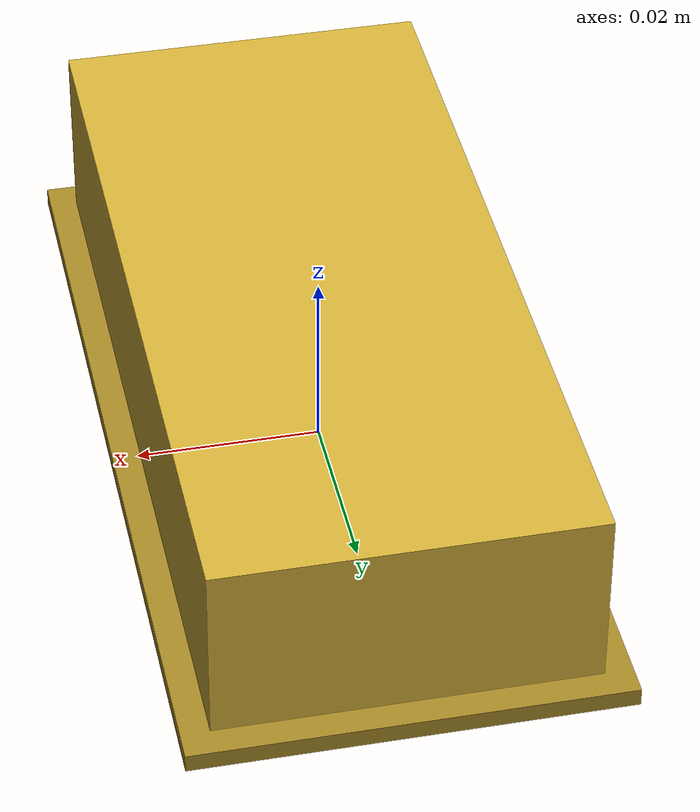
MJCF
<mujoco model="Switch_Quantity1_04">
  <asset>
    <material name="Switch_Quantity1_04_bezel" rgba="0.65 0.53 0.15 1" specular="0.9" shininess="0.95"/>
    <material name="Switch_Quantity1_04_button" rgba="0.83 0.69 0.22 1" specular="0.9" shininess="0.95"/>
  </asset>
  <worldbody>
    <body name="Switch_Quantity1_04">
      <geom name="Switch_Quantity1_04_bezel" type="box"
            pos="0 0 0.001" size="0.023 0.0475 0.001"
            material="Switch_Quantity1_04_bezel"/>
      <geom name="Switch_Quantity1_04_button" type="box"
            pos="0 0 0.011" size="0.02 0.0445 0.011"
            material="Switch_Quantity1_04_button"/>
    </body>
  </worldbody>
</mujoco>
